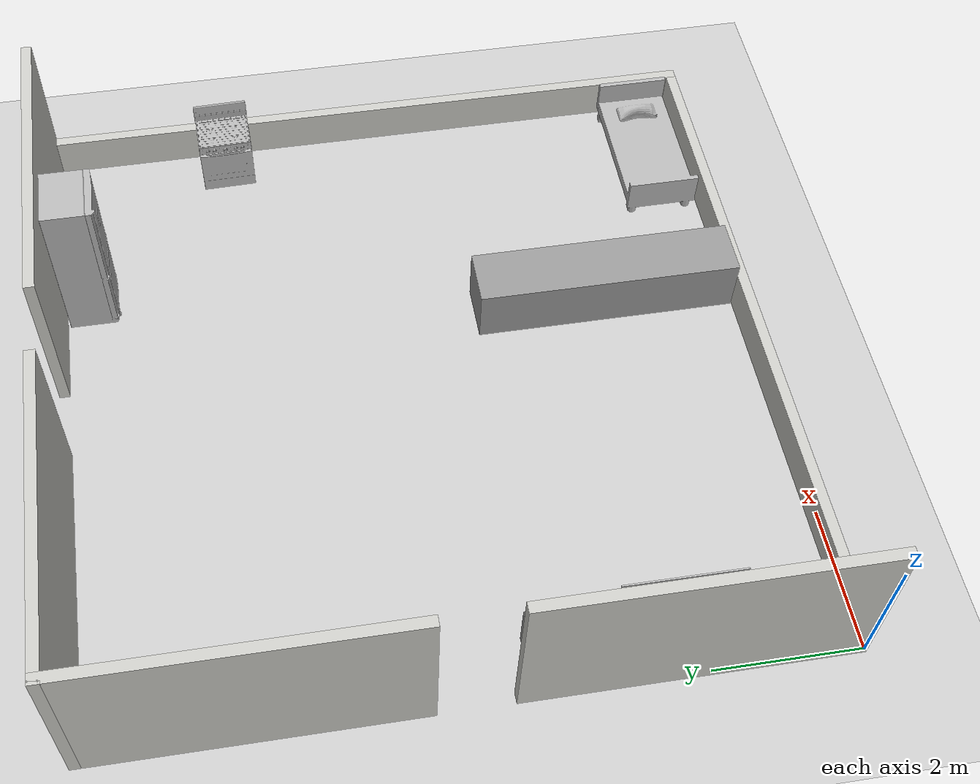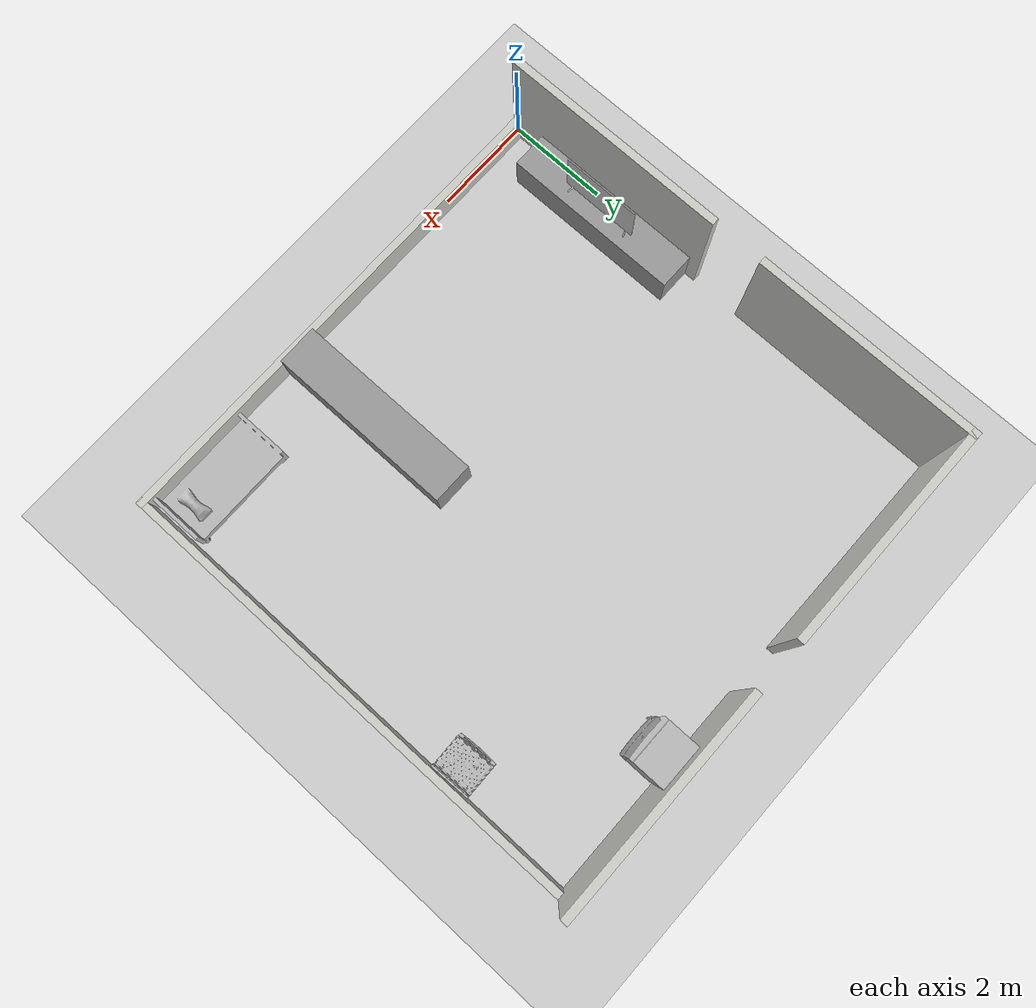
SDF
<sdf version="1.7">
 <world name="default">
  <light name="sun" type="directional">
   <pose>0 0 10 0 -0 0</pose>
   <diffuse>0.8 0.8 0.8 1</diffuse>
   <specular>0.2 0.2 0.2 1</specular>
   <attenuation>
    <range>1000</range>
    <constant>0.9</constant>
    <linear>0.01</linear>
    <quadratic>0.001</quadratic>
   </attenuation>
   <direction>-0.5 0.1 -0.9</direction>
   <spot><inner_angle>0</inner_angle><outer_angle>0</outer_angle><falloff>0</falloff></spot>
  </light>
  <model name="ground_plane">
   <static>1</static>
   <link name="link">
    <collision name="collision">
     <geometry><plane><normal>0 0 1</normal><size>100 100</size></plane></geometry>
     <surface>
      <contact><collide_bitmask>65535</collide_bitmask></contact>
      <friction><ode><mu>100</mu><mu2>50</mu2></ode></friction>
     </surface>
    </collision>
    <visual name="visual">
     <cast_shadows>0</cast_shadows>
     <geometry><plane><normal>0 0 1</normal><size>100 100</size></plane></geometry>
     <material>
      <script><uri>file://media/materials/scripts/gazebo.material</uri><name>Gazebo/Grey</name></script>
     </material>
    </visual>
   </link>
  </model>
  <gravity>0 0 -9.8</gravity>
  <magnetic_field>6e-06 2.3e-05 -4.2e-05</magnetic_field>
  <atmosphere type="adiabatic"/>
  <physics type="ode">
   <max_step_size>0.001</max_step_size>
   <real_time_factor>1</real_time_factor>
   <real_time_update_rate>1000</real_time_update_rate>
  </physics>
  <scene><ambient>0.4 0.4 0.4 1</ambient><background>0.7 0.7 0.7 1</background><shadows>1</shadows></scene>
  <audio><device>default</device></audio>
  <spherical_coordinates>
   <surface_model>EARTH_WGS84</surface_model>
   <latitude_deg>0</latitude_deg>
   <longitude_deg>0</longitude_deg>
   <elevation>0</elevation>
   <heading_deg>0</heading_deg>
  </spherical_coordinates>
  <model name="base_arena">
   <pose>5.12754 4.9962 0 0 -0 0</pose>
   <link name="Wall_10">
    <collision name="Wall_10_Collision">
     <geometry><box><size>4.5 0.15 2.5</size></box></geometry>
     <pose>0 0 1.25 0 -0 0</pose>
    </collision>
    <visual name="Wall_10_Visual">
     <pose>0 0 1.25 0 -0 0</pose>
     <geometry><box><size>4.5 0.15 2.5</size></box></geometry>
     <material>
      <script><uri>file://media/materials/scripts/gazebo.material</uri><name>Gazebo/CeilingTiled</name></script>
      <ambient>1 1 1 1</ambient>
     </material>
     <meta><layer>0</layer></meta>
    </visual>
    <pose>2.5785 4.9249 0 0 -0 -3.1415</pose>
   </link>
   <link name="Wall_12">
    <collision name="Wall_12_Collision">
     <geometry><box><size>4.5 0.15 2.5</size></box></geometry>
     <pose>0 0 1.25 0 -0 0</pose>
    </collision>
    <visual name="Wall_12_Visual">
     <pose>0 0 1.25 0 -0 0</pose>
     <geometry><box><size>4.5 0.15 2.5</size></box></geometry>
     <material>
      <script><uri>file://media/materials/scripts/gazebo.material</uri><name>Gazebo/CeilingTiled</name></script>
      <ambient>1 1 1 1</ambient>
     </material>
     <meta><layer>0</layer></meta>
    </visual>
    <pose>-5.09668 2.74971 0 0 -0 -1.5708</pose>
   </link>
   <link name="Wall_14">
    <collision name="Wall_14_Collision">
     <geometry><box><size>4.5 0.15 2.5</size></box></geometry>
     <pose>0 0 1.25 0 -0 0</pose>
    </collision>
    <visual name="Wall_14_Visual">
     <pose>0 0 1.25 0 -0 0</pose>
     <geometry><box><size>4.5 0.15 2.5</size></box></geometry>
     <material>
      <script><uri>file://media/materials/scripts/gazebo.material</uri><name>Gazebo/CeilingTiled</name></script>
      <ambient>1 1 1 1</ambient>
     </material>
     <meta><layer>0</layer></meta>
    </visual>
    <pose>-5.0965 -2.7501 0 0 -0 1.57088</pose>
   </link>
   <link name="Wall_3">
    <collision name="Wall_3_Collision">
     <geometry><box><size>10 0.15 0.6</size></box></geometry>
     <pose>0 0 0.3 0 -0 0</pose>
    </collision>
    <visual name="Wall_3_Visual">
     <pose>0 0 0.3 0 -0 0</pose>
     <geometry><box><size>10 0.15 0.6</size></box></geometry>
     <material>
      <script><uri>file://media/materials/scripts/gazebo.material</uri><name>Gazebo/CeilingTiled</name></script>
      <ambient>1 1 1 1</ambient>
     </material>
     <meta><layer>0</layer></meta>
    </visual>
    <pose>-0.17131 -4.9249 0 0 -0 0</pose>
   </link>
   <link name="Wall_4">
    <collision name="Wall_4_Collision">
     <geometry><box><size>10 0.15 0.6</size></box></geometry>
     <pose>0 0 0.3 0 -0 0</pose>
    </collision>
    <visual name="Wall_4_Visual">
     <pose>0 0 0.3 0 -0 0</pose>
     <geometry><box><size>10 0.15 0.6</size></box></geometry>
     <material>
      <script><uri>file://media/materials/scripts/gazebo.material</uri><name>Gazebo/CeilingTiled</name></script>
      <ambient>1 1 1 1</ambient>
     </material>
     <meta><layer>0</layer></meta>
    </visual>
    <pose>4.75369 9.8e-05 0 0 -0 1.5708</pose>
   </link>
   <link name="Wall_8">
    <collision name="Wall_8_Collision">
     <geometry><box><size>4.5 0.15 2.5</size></box></geometry>
     <pose>0 0 1.25 0 -0 0</pose>
    </collision>
    <visual name="Wall_8_Visual">
     <pose>0 0 1.25 0 -0 0</pose>
     <geometry><box><size>4.5 0.15 2.5</size></box></geometry>
     <material>
      <script><uri>file://media/materials/scripts/gazebo.material</uri><name>Gazebo/CeilingTiled</name></script>
      <ambient>1 1 1 1</ambient>
     </material>
     <meta><layer>0</layer></meta>
    </visual>
    <pose>-2.92168 4.92471 0 0 -0 0</pose>
   </link>
   <static>1</static>
  </model>
  <model name="bed">
   <static>1</static>
   <link name="bed">
    <visual name="visual">
     <geometry><mesh><uri>model://bed/bed_model.stl</uri><scale>0.015 0.015 0.015</scale></mesh></geometry>
    </visual>
    <static>1</static>
   </link>
   <pose>6.06879 2.16784 0.382685 0 0 -3.13942</pose>
  </model>
  <model name="unit_box">
   <pose>6.03796 2.0451 0.417543 0.000335 -0 6e-06</pose>
   <link name="link">
    <inertial>
     <mass>1</mass>
     <inertia>
      <ixx>0.166667</ixx>
      <ixy>0</ixy>
      <ixz>0</ixz>
      <iyy>0.166667</iyy>
      <iyz>0</iyz>
      <izz>0.166667</izz>
     </inertia>
    </inertial>
    <collision name="collision"><geometry><box><size>0.807738 3.77094 0.836349</size></box></geometry></collision>
    <visual name="visual">
     <geometry><box><size>0.807738 3.77094 0.836349</size></box></geometry>
     <material>
      <script><name>Gazebo/Grey</name><uri>file://media/materials/scripts/gazebo.material</uri></script>
     </material>
    </visual>
   </link>
  </model>
  <model name="unit_box_0">
   <pose>0.461919 2.48984 0.377971 -0.000295 0 1.8e-05</pose>
   <link name="link">
    <inertial>
     <mass>1</mass>
     <inertia>
      <ixx>0.166667</ixx>
      <ixy>0</ixy>
      <ixz>0</ixz>
      <iyy>0.166667</iyy>
      <iyz>0</iyz>
      <izz>0.166667</izz>
     </inertia>
    </inertial>
    <collision name="collision"><geometry><box><size>0.711556 3.58717 0.757</size></box></geometry></collision>
    <visual name="visual">
     <geometry><box><size>0.711556 3.58717 0.757</size></box></geometry>
     <material>
      <script><name>Gazebo/Grey</name><uri>file://media/materials/scripts/gazebo.material</uri></script>
     </material>
    </visual>
   </link>
  </model>
  <model name="tv">
   <static>1</static>
   <link name="tv">
    <visual name="visual">
     <geometry><mesh><uri>model://tv/tv.dae</uri><scale>1 1 1</scale></mesh></geometry>
    </visual>
    <static>1</static>
   </link>
   <pose>0.488014 2.44719 0.727922 0 -0 1.56845</pose>
  </model>
  <model name="Refrigerator">
   <static>1</static>
   <link name="Refrigerator">
    <visual name="visual">
     <geometry>
      <mesh><uri>model://refrigerator/refrigerator.stl</uri><scale>0.03 0.03 0.03</scale></mesh>
     </geometry>
    </visual>
    <static>1</static>
   </link>
   <pose>7.11247 9.47879 0 0 -0 0</pose>
  </model>
  <model name="Stove">
   <static>1</static>
   <link name="Stove">
    <visual name="visual">
     <geometry><mesh><uri>model://stove/stove.stl</uri><scale>1 1 1</scale></mesh></geometry>
    </visual>
    <static>1</static>
   </link>
   <pose>9.3715 7.27072 0 0 0 -1.54782</pose>
  </model>
 </world>
</sdf>
